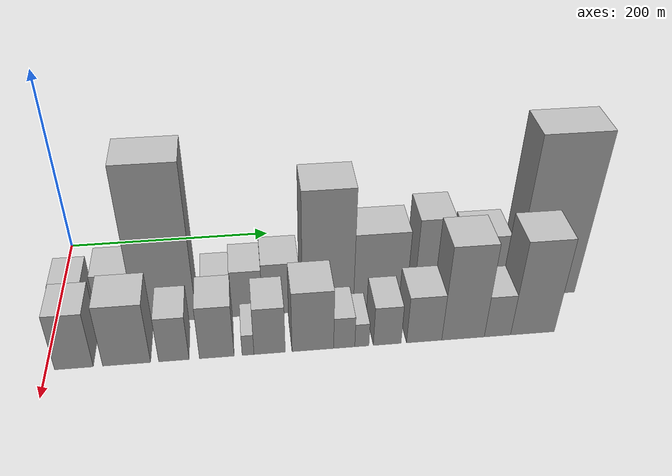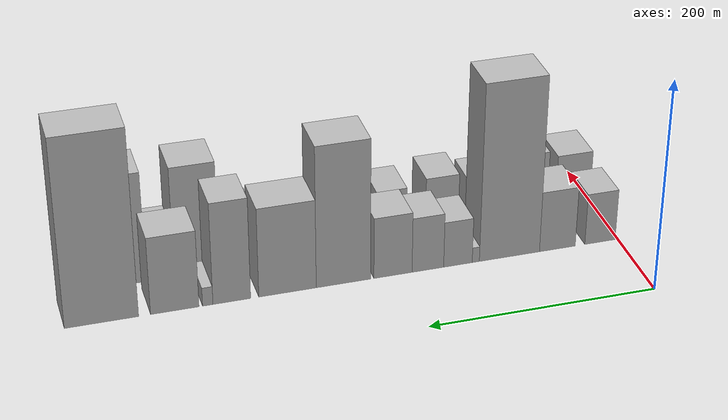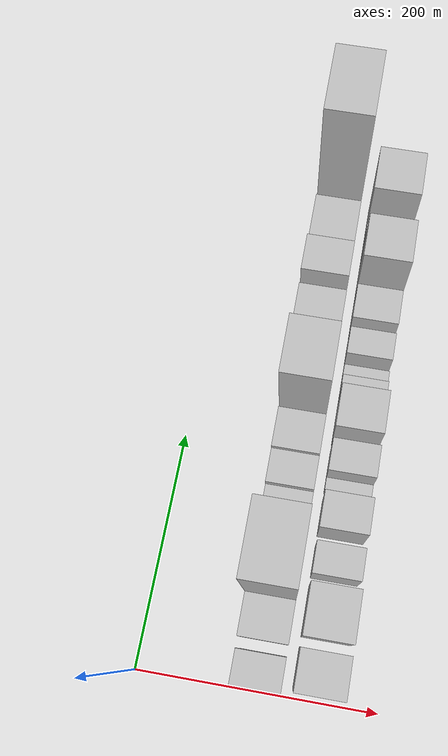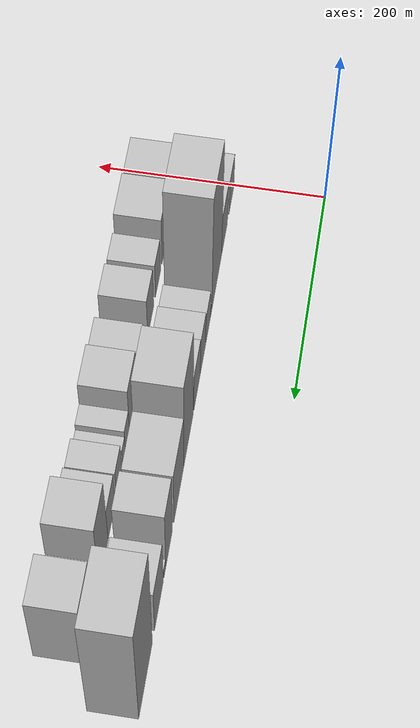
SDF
<sdf version="1.6">
 <world name="default">
  <model name="building_14">
   <static>1</static>
   <pose>100.0000 16.6453 0 0.000000 0.000000 0.000000</pose>
   <link name="link">
    <pose>0 0 25.50 0 0 0</pose>
    <collision name="collision"><geometry><box><size>40.0000 28.5103 51.0000</size></box></geometry></collision>
    <visual name="visual">
     <cast_shadows>0</cast_shadows>
     <geometry><box><size>40.0000 28.5103 51.0000</size></box></geometry>
     <material>
      <script>
       <uri>model://HANNAS_wall/materials/scripts</uri>
       <uri>model://HANNAS_wall/materials/textures</uri>
       <name>vrc/HANNAS_wall</name>
      </script>
     </material>
    </visual>
   </link>
  </model>
  <model name="building_15">
   <static>1</static>
   <pose>100.0000 56.5513 0 0.000000 0.000000 0.000000</pose>
   <link name="link">
    <pose>0 0 30.00 0 0 0</pose>
    <collision name="collision"><geometry><box><size>40.0000 33.3017 60.0000</size></box></geometry></collision>
    <visual name="visual">
     <cast_shadows>0</cast_shadows>
     <geometry><box><size>40.0000 33.3017 60.0000</size></box></geometry>
     <material>
      <script>
       <uri>model://HANNAS_wall/materials/scripts</uri>
       <uri>model://HANNAS_wall/materials/textures</uri>
       <name>vrc/HANNAS_wall</name>
      </script>
     </material>
    </visual>
   </link>
  </model>
  <model name="building_16">
   <static>1</static>
   <pose>100.0000 100.8436 0 0.000000 0.000000 0.000000</pose>
   <link name="link">
    <pose>0 0 87.00 0 0 0</pose>
    <collision name="collision"><geometry><box><size>40.0000 55.2830 174.0000</size></box></geometry></collision>
    <visual name="visual">
     <cast_shadows>0</cast_shadows>
     <geometry><box><size>40.0000 55.2830 174.0000</size></box></geometry>
     <material>
      <script>
       <uri>model://HANNAS_wall/materials/scripts</uri>
       <uri>model://HANNAS_wall/materials/textures</uri>
       <name>vrc/HANNAS_wall</name>
      </script>
     </material>
    </visual>
   </link>
  </model>
  <model name="building_17">
   <static>1</static>
   <pose>100.0000 131.7493 0 0.000000 0.000000 0.000000</pose>
   <link name="link">
    <pose>0 0 7.50 0 0 0</pose>
    <collision name="collision"><geometry><box><size>40.0000 6.5283 15.0000</size></box></geometry></collision>
    <visual name="visual">
     <cast_shadows>0</cast_shadows>
     <geometry><box><size>40.0000 6.5283 15.0000</size></box></geometry>
     <material>
      <script>
       <uri>model://HANNAS_wall/materials/scripts</uri>
       <uri>model://HANNAS_wall/materials/textures</uri>
       <name>vrc/HANNAS_wall</name>
      </script>
     </material>
    </visual>
   </link>
  </model>
  <model name="building_18">
   <static>1</static>
   <pose>100.0000 147.9498 0 0.000000 0.000000 0.000000</pose>
   <link name="link">
    <pose>0 0 22.50 0 0 0</pose>
    <collision name="collision"><geometry><box><size>40.0000 25.8728 45.0000</size></box></geometry></collision>
    <visual name="visual">
     <cast_shadows>0</cast_shadows>
     <geometry><box><size>40.0000 25.8728 45.0000</size></box></geometry>
     <material>
      <script>
       <uri>model://HANNAS_wall/materials/scripts</uri>
       <uri>model://HANNAS_wall/materials/textures</uri>
       <name>vrc/HANNAS_wall</name>
      </script>
     </material>
    </visual>
   </link>
  </model>
  <model name="building_19">
   <static>1</static>
   <pose>100.0000 175.1224 0 0.000000 0.000000 0.000000</pose>
   <link name="link">
    <pose>0 0 27.00 0 0 0</pose>
    <collision name="collision"><geometry><box><size>40.0000 28.4724 54.0000</size></box></geometry></collision>
    <visual name="visual">
     <cast_shadows>0</cast_shadows>
     <geometry><box><size>40.0000 28.4724 54.0000</size></box></geometry>
     <material>
      <script>
       <uri>model://HANNAS_wall/materials/scripts</uri>
       <uri>model://HANNAS_wall/materials/textures</uri>
       <name>vrc/HANNAS_wall</name>
      </script>
     </material>
    </visual>
   </link>
  </model>
  <model name="building_20">
   <static>1</static>
   <pose>100.0000 206.3816 0 0.000000 0.000000 0.000000</pose>
   <link name="link">
    <pose>0 0 30.00 0 0 0</pose>
    <collision name="collision"><geometry><box><size>40.0000 34.0460 60.0000</size></box></geometry></collision>
    <visual name="visual">
     <cast_shadows>0</cast_shadows>
     <geometry><box><size>40.0000 34.0460 60.0000</size></box></geometry>
     <material>
      <script>
       <uri>model://HANNAS_wall/materials/scripts</uri>
       <uri>model://HANNAS_wall/materials/textures</uri>
       <name>vrc/HANNAS_wall</name>
      </script>
     </material>
    </visual>
   </link>
  </model>
  <model name="building_21">
   <static>1</static>
   <pose>100.0000 250.3081 0 0.000000 0.000000 0.000000</pose>
   <link name="link">
    <pose>0 0 69.00 0 0 0</pose>
    <collision name="collision"><geometry><box><size>40.0000 47.8070 138.0000</size></box></geometry></collision>
    <visual name="visual">
     <cast_shadows>0</cast_shadows>
     <geometry><box><size>40.0000 47.8070 138.0000</size></box></geometry>
     <material>
      <script>
       <uri>model://HANNAS_wall/materials/scripts</uri>
       <uri>model://HANNAS_wall/materials/textures</uri>
       <name>vrc/HANNAS_wall</name>
      </script>
     </material>
    </visual>
   </link>
  </model>
  <model name="building_22">
   <static>1</static>
   <pose>100.0000 299.1764 0 0.000000 0.000000 0.000000</pose>
   <link name="link">
    <pose>0 0 43.50 0 0 0</pose>
    <collision name="collision"><geometry><box><size>40.0000 49.9296 87.0000</size></box></geometry></collision>
    <visual name="visual">
     <cast_shadows>0</cast_shadows>
     <geometry><box><size>40.0000 49.9296 87.0000</size></box></geometry>
     <material>
      <script>
       <uri>model://HANNAS_wall/materials/scripts</uri>
       <uri>model://HANNAS_wall/materials/textures</uri>
       <name>vrc/HANNAS_wall</name>
      </script>
     </material>
    </visual>
   </link>
  </model>
  <model name="building_23">
   <static>1</static>
   <pose>100.0000 347.2928 0 0.000000 0.000000 0.000000</pose>
   <link name="link">
    <pose>0 0 49.50 0 0 0</pose>
    <collision name="collision"><geometry><box><size>40.0000 32.3032 99.0000</size></box></geometry></collision>
    <visual name="visual">
     <cast_shadows>0</cast_shadows>
     <geometry><box><size>40.0000 32.3032 99.0000</size></box></geometry>
     <material>
      <script>
       <uri>model://HANNAS_wall/materials/scripts</uri>
       <uri>model://HANNAS_wall/materials/textures</uri>
       <name>vrc/HANNAS_wall</name>
      </script>
     </material>
    </visual>
   </link>
  </model>
  <model name="building_24">
   <static>1</static>
   <pose>100.0000 367.8692 0 0.000000 0.000000 0.000000</pose>
   <link name="link">
    <pose>0 0 9.00 0 0 0</pose>
    <collision name="collision"><geometry><box><size>40.0000 8.8497 18.0000</size></box></geometry></collision>
    <visual name="visual">
     <cast_shadows>0</cast_shadows>
     <geometry><box><size>40.0000 8.8497 18.0000</size></box></geometry>
     <material>
      <script>
       <uri>model://HANNAS_wall/materials/scripts</uri>
       <uri>model://HANNAS_wall/materials/textures</uri>
       <name>vrc/HANNAS_wall</name>
      </script>
     </material>
    </visual>
   </link>
  </model>
  <model name="building_25">
   <static>1</static>
   <pose>100.0000 395.7719 0 0.000000 0.000000 0.000000</pose>
   <link name="link">
    <pose>0 0 37.50 0 0 0</pose>
    <collision name="collision"><geometry><box><size>40.0000 40.9558 75.0000</size></box></geometry></collision>
    <visual name="visual">
     <cast_shadows>0</cast_shadows>
     <geometry><box><size>40.0000 40.9558 75.0000</size></box></geometry>
     <material>
      <script>
       <uri>model://HANNAS_wall/materials/scripts</uri>
       <uri>model://HANNAS_wall/materials/textures</uri>
       <name>vrc/HANNAS_wall</name>
      </script>
     </material>
    </visual>
   </link>
  </model>
  <model name="building_26">
   <static>1</static>
   <pose>100.0000 457.0901 0 0.000000 0.000000 0.000000</pose>
   <link name="link">
    <pose>0 0 90.00 0 0 0</pose>
    <collision name="collision"><geometry><box><size>40.0000 61.6807 180.0000</size></box></geometry></collision>
    <visual name="visual">
     <cast_shadows>0</cast_shadows>
     <geometry><box><size>40.0000 61.6807 180.0000</size></box></geometry>
     <material>
      <script>
       <uri>model://HANNAS_wall/materials/scripts</uri>
       <uri>model://HANNAS_wall/materials/textures</uri>
       <name>vrc/HANNAS_wall</name>
      </script>
     </material>
    </visual>
   </link>
  </model>
  <model name="building_39">
   <static>1</static>
   <pose>149.0000 23.7741 0 0.000000 0.000000 0.000000</pose>
   <link name="link">
    <pose>0 0 31.50 0 0 0</pose>
    <collision name="collision"><geometry><box><size>40.0000 32.8287 63.0000</size></box></geometry></collision>
    <visual name="visual">
     <cast_shadows>0</cast_shadows>
     <geometry><box><size>40.0000 32.8287 63.0000</size></box></geometry>
     <material>
      <script>
       <uri>model://HANNAS_wall/materials/scripts</uri>
       <uri>model://HANNAS_wall/materials/textures</uri>
       <name>vrc/HANNAS_wall</name>
      </script>
     </material>
    </visual>
   </link>
  </model>
  <model name="building_40">
   <static>1</static>
   <pose>149.0000 68.7237 0 0.000000 0.000000 0.000000</pose>
   <link name="link">
    <pose>0 0 34.50 0 0 0</pose>
    <collision name="collision"><geometry><box><size>40.0000 41.0706 69.0000</size></box></geometry></collision>
    <visual name="visual">
     <cast_shadows>0</cast_shadows>
     <geometry><box><size>40.0000 41.0706 69.0000</size></box></geometry>
     <material>
      <script>
       <uri>model://HANNAS_wall/materials/scripts</uri>
       <uri>model://HANNAS_wall/materials/textures</uri>
       <name>vrc/HANNAS_wall</name>
      </script>
     </material>
    </visual>
   </link>
  </model>
  <model name="building_41">
   <static>1</static>
   <pose>149.0000 109.4013 0 0.000000 0.000000 0.000000</pose>
   <link name="link">
    <pose>0 0 25.50 0 0 0</pose>
    <collision name="collision"><geometry><box><size>40.0000 26.2847 51.0000</size></box></geometry></collision>
    <visual name="visual">
     <cast_shadows>0</cast_shadows>
     <geometry><box><size>40.0000 26.2847 51.0000</size></box></geometry>
     <material>
      <script>
       <uri>model://HANNAS_wall/materials/scripts</uri>
       <uri>model://HANNAS_wall/materials/textures</uri>
       <name>vrc/HANNAS_wall</name>
      </script>
     </material>
    </visual>
   </link>
  </model>
  <model name="building_42">
   <static>1</static>
   <pose>149.0000 146.6737 0 0.000000 0.000000 0.000000</pose>
   <link name="link">
    <pose>0 0 30.00 0 0 0</pose>
    <collision name="collision"><geometry><box><size>40.0000 30.2600 60.0000</size></box></geometry></collision>
    <visual name="visual">
     <cast_shadows>0</cast_shadows>
     <geometry><box><size>40.0000 30.2600 60.0000</size></box></geometry>
     <material>
      <script>
       <uri>model://HANNAS_wall/materials/scripts</uri>
       <uri>model://HANNAS_wall/materials/textures</uri>
       <name>vrc/HANNAS_wall</name>
      </script>
     </material>
    </visual>
   </link>
  </model>
  <model name="building_43">
   <static>1</static>
   <pose>149.0000 173.9900 0 0.000000 0.000000 0.000000</pose>
   <link name="link">
    <pose>0 0 12.00 0 0 0</pose>
    <collision name="collision"><geometry><box><size>40.0000 10.3725 24.0000</size></box></geometry></collision>
    <visual name="visual">
     <cast_shadows>0</cast_shadows>
     <geometry><box><size>40.0000 10.3725 24.0000</size></box></geometry>
     <material>
      <script>
       <uri>model://HANNAS_wall/materials/scripts</uri>
       <uri>model://HANNAS_wall/materials/textures</uri>
       <name>vrc/HANNAS_wall</name>
      </script>
     </material>
    </visual>
   </link>
  </model>
  <model name="building_44">
   <static>1</static>
   <pose>149.0000 192.9733 0 0.000000 0.000000 0.000000</pose>
   <link name="link">
    <pose>0 0 27.00 0 0 0</pose>
    <collision name="collision"><geometry><box><size>40.0000 27.5943 54.0000</size></box></geometry></collision>
    <visual name="visual">
     <cast_shadows>0</cast_shadows>
     <geometry><box><size>40.0000 27.5943 54.0000</size></box></geometry>
     <material>
      <script>
       <uri>model://HANNAS_wall/materials/scripts</uri>
       <uri>model://HANNAS_wall/materials/textures</uri>
       <name>vrc/HANNAS_wall</name>
      </script>
     </material>
    </visual>
   </link>
  </model>
  <model name="building_45">
   <static>1</static>
   <pose>149.0000 231.2498 0 0.000000 0.000000 0.000000</pose>
   <link name="link">
    <pose>0 0 34.50 0 0 0</pose>
    <collision name="collision"><geometry><box><size>40.0000 36.9586 69.0000</size></box></geometry></collision>
    <visual name="visual">
     <cast_shadows>0</cast_shadows>
     <geometry><box><size>40.0000 36.9586 69.0000</size></box></geometry>
     <material>
      <script>
       <uri>model://HANNAS_wall/materials/scripts</uri>
       <uri>model://HANNAS_wall/materials/textures</uri>
       <name>vrc/HANNAS_wall</name>
      </script>
     </material>
    </visual>
   </link>
  </model>
  <model name="building_46">
   <static>1</static>
   <pose>149.0000 259.1879 0 0.000000 0.000000 0.000000</pose>
   <link name="link">
    <pose>0 0 18.00 0 0 0</pose>
    <collision name="collision"><geometry><box><size>40.0000 18.9176 36.0000</size></box></geometry></collision>
    <visual name="visual">
     <cast_shadows>0</cast_shadows>
     <geometry><box><size>40.0000 18.9176 36.0000</size></box></geometry>
     <material>
      <script>
       <uri>model://HANNAS_wall/materials/scripts</uri>
       <uri>model://HANNAS_wall/materials/textures</uri>
       <name>vrc/HANNAS_wall</name>
      </script>
     </material>
    </visual>
   </link>
  </model>
  <model name="building_47">
   <static>1</static>
   <pose>149.0000 274.9735 0 0.000000 0.000000 0.000000</pose>
   <link name="link">
    <pose>0 0 13.50 0 0 0</pose>
    <collision name="collision"><geometry><box><size>40.0000 12.6537 27.0000</size></box></geometry></collision>
    <visual name="visual">
     <cast_shadows>0</cast_shadows>
     <geometry><box><size>40.0000 12.6537 27.0000</size></box></geometry>
     <material>
      <script>
       <uri>model://HANNAS_wall/materials/scripts</uri>
       <uri>model://HANNAS_wall/materials/textures</uri>
       <name>vrc/HANNAS_wall</name>
      </script>
     </material>
    </visual>
   </link>
  </model>
  <model name="building_48">
   <static>1</static>
   <pose>149.0000 297.8058 0 0.000000 0.000000 0.000000</pose>
   <link name="link">
    <pose>0 0 22.50 0 0 0</pose>
    <collision name="collision"><geometry><box><size>40.0000 25.0109 45.0000</size></box></geometry></collision>
    <visual name="visual">
     <cast_shadows>0</cast_shadows>
     <geometry><box><size>40.0000 25.0109 45.0000</size></box></geometry>
     <material>
      <script>
       <uri>model://HANNAS_wall/materials/scripts</uri>
       <uri>model://HANNAS_wall/materials/textures</uri>
       <name>vrc/HANNAS_wall</name>
      </script>
     </material>
    </visual>
   </link>
  </model>
  <model name="building_49">
   <static>1</static>
   <pose>149.0000 331.3076 0 0.000000 0.000000 0.000000</pose>
   <link name="link">
    <pose>0 0 27.00 0 0 0</pose>
    <collision name="collision"><geometry><box><size>40.0000 31.9926 54.0000</size></box></geometry></collision>
    <visual name="visual">
     <cast_shadows>0</cast_shadows>
     <geometry><box><size>40.0000 31.9926 54.0000</size></box></geometry>
     <material>
      <script>
       <uri>model://HANNAS_wall/materials/scripts</uri>
       <uri>model://HANNAS_wall/materials/textures</uri>
       <name>vrc/HANNAS_wall</name>
      </script>
     </material>
    </visual>
   </link>
  </model>
  <model name="building_50">
   <static>1</static>
   <pose>149.0000 366.8159 0 0.000000 0.000000 0.000000</pose>
   <link name="link">
    <pose>0 0 54.00 0 0 0</pose>
    <collision name="collision"><geometry><box><size>40.0000 39.0240 108.0000</size></box></geometry></collision>
    <visual name="visual">
     <cast_shadows>0</cast_shadows>
     <geometry><box><size>40.0000 39.0240 108.0000</size></box></geometry>
     <material>
      <script>
       <uri>model://HANNAS_wall/materials/scripts</uri>
       <uri>model://HANNAS_wall/materials/textures</uri>
       <name>vrc/HANNAS_wall</name>
      </script>
     </material>
    </visual>
   </link>
  </model>
  <model name="building_51">
   <static>1</static>
   <pose>149.0000 398.4611 0 0.000000 0.000000 0.000000</pose>
   <link name="link">
    <pose>0 0 24.00 0 0 0</pose>
    <collision name="collision"><geometry><box><size>40.0000 24.2664 48.0000</size></box></geometry></collision>
    <visual name="visual">
     <cast_shadows>0</cast_shadows>
     <geometry><box><size>40.0000 24.2664 48.0000</size></box></geometry>
     <material>
      <script>
       <uri>model://HANNAS_wall/materials/scripts</uri>
       <uri>model://HANNAS_wall/materials/textures</uri>
       <name>vrc/HANNAS_wall</name>
      </script>
     </material>
    </visual>
   </link>
  </model>
  <model name="building_52">
   <static>1</static>
   <pose>149.0000 430.9039 0 0.000000 0.000000 0.000000</pose>
   <link name="link">
    <pose>0 0 54.00 0 0 0</pose>
    <collision name="collision"><geometry><box><size>40.0000 40.6193 108.0000</size></box></geometry></collision>
    <visual name="visual">
     <cast_shadows>0</cast_shadows>
     <geometry><box><size>40.0000 40.6193 108.0000</size></box></geometry>
     <material>
      <script>
       <uri>model://HANNAS_wall/materials/scripts</uri>
       <uri>model://HANNAS_wall/materials/textures</uri>
       <name>vrc/HANNAS_wall</name>
      </script>
     </material>
    </visual>
   </link>
  </model>
 </world>
</sdf>
